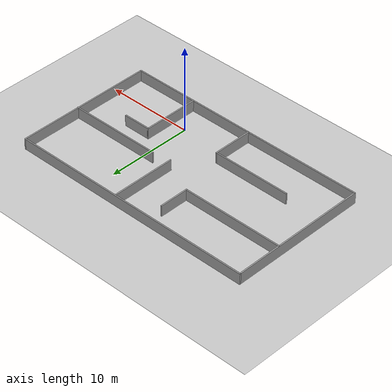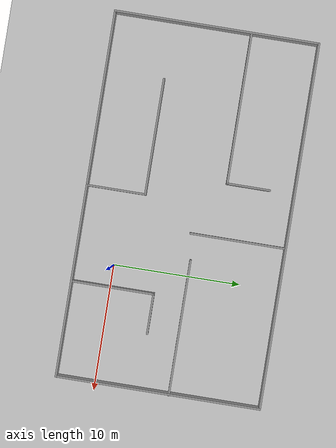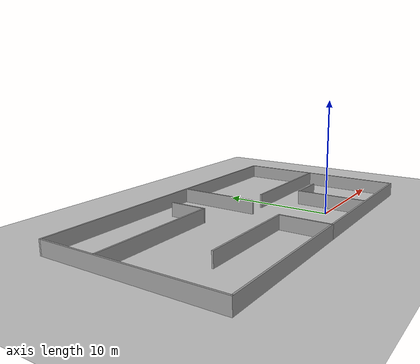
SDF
<?xml version='1.0'?>
<sdf version='1.7'>
  <world name='grasp_assignment_world'>

    <light name='sun' type='directional'>
      <cast_shadows>1</cast_shadows>
      <pose>0 0 10 0 -0 0</pose>
      <diffuse>0.8 0.8 0.8 1</diffuse>
      <specular>0.2 0.2 0.2 1</specular>
      <attenuation><range>1000</range><constant>0.9</constant><linear>0.01</linear><quadratic>0.001</quadratic></attenuation>
      <direction>-0.5 0.1 -0.9</direction>
    </light>

    <model name='ground_plane'>
      <static>1</static>
      <link name='link'>
        <collision name='collision'>
          <geometry><plane><normal>0 0 1</normal><size>100 100</size></plane></geometry>
          <surface><friction><ode><mu>100</mu><mu2>50</mu2></ode></friction></surface>
        </collision>
        <visual name='visual'>
          <cast_shadows>0</cast_shadows>
          <geometry><plane><normal>0 0 1</normal><size>100 100</size></plane></geometry>
          <material><script><uri>file://media/materials/scripts/gazebo.material</uri><name>Gazebo/Grey</name></script></material>
        </visual>
      </link>
    </model>

    <model name='target_cube'>
      <pose>0.27 0 0.03 0 0 0</pose>
      <link name='link'>
        <inertial>
          <mass>0.2</mass>
          <inertia>
            <ixx>8.33e-5</ixx><ixy>0</ixy><ixz>0</ixz>
            <iyy>8.33e-5</iyy><iyz>0</iyz>
            <izz>8.33e-5</izz>
          </inertia>
        </inertial>
        <collision name='collision'>
          <geometry><box><size>0.05 0.05 0.05</size></box></geometry>
          <surface>
            <friction><ode><mu>20.0</mu><mu2>20.0</mu2></ode></friction>
            <contact><ode><kp>10000.0</kp><kd>100.0</kd><min_depth>0.001</min_depth></ode></contact>
          </surface>
        </collision>
        <visual name='visual'>
          <geometry><box><size>0.05 0.05 0.05</size></box></geometry>
          <material><script><name>Gazebo/Blue</name><uri>file://media/materials/scripts/gazebo.material</uri></script></material>
        </visual>
      </link>
    </model>

    <model name='room_walls'>
      <pose>-5.16529 5.02 0 0 -0 0</pose>
      <static>1</static>

      <link name='Wall_0'>
        <pose>6.85529 -8.05 0 0 -0 0</pose>
        <collision name='Collision'><geometry><box><size>15.25 0.15 2.5</size></box></geometry></collision>
        <visual name='Visual'><geometry><box><size>15.25 0.15 2.5</size></box></geometry><material><script><uri>file://media/materials/scripts/gazebo.material</uri><name>Gazebo/Grey</name></script></material></visual>
      </link>
      <link name='Wall_1'>
        <pose>14.4053 0 0 0 -0 1.5708</pose>
        <collision name='Collision'><geometry><box><size>16.25 0.15 2.5</size></box></geometry></collision>
        <visual name='Visual'><geometry><box><size>16.25 0.15 2.5</size></box></geometry><material><script><uri>file://media/materials/scripts/gazebo.material</uri><name>Gazebo/Grey</name></script></material></visual>
      </link>
      <link name='Wall_2'>
        <pose>-0.019713 8.05 0 0 -0 3.14159</pose>
        <collision name='Collision'><geometry><box><size>29 0.15 2.5</size></box></geometry></collision>
        <visual name='Visual'><geometry><box><size>29 0.15 2.5</size></box></geometry><material><script><uri>file://media/materials/scripts/gazebo.material</uri><name>Gazebo/Grey</name></script></material></visual>
      </link>
      <link name='Wall_3'>
        <pose>-14.4447 0 0 0 -0 -1.5708</pose>
        <collision name='Collision'><geometry><box><size>16.25 0.15 2.5</size></box></geometry></collision>
        <visual name='Visual'><geometry><box><size>16.25 0.15 2.5</size></box></geometry><material><script><uri>file://media/materials/scripts/gazebo.material</uri><name>Gazebo/Grey</name></script></material></visual>
      </link>
      <link name='Wall_4'>
        <pose>-7.56971 -8.05 0 0 -0 0</pose>
        <collision name='Collision'><geometry><box><size>13.9 0.15 2.5</size></box></geometry></collision>
        <visual name='Visual'><geometry><box><size>13.9 0.15 2.5</size></box></geometry><material><script><uri>file://media/materials/scripts/gazebo.material</uri><name>Gazebo/Grey</name></script></material></visual>
      </link>
      <link name='Wall_5'>
        <pose>-0.694713 -5.75 0 0 -0 1.5708</pose>
        <collision name='Wall_5_Collision'><geometry><box><size>4.75 0.15 2.5</size></box></geometry></collision>
        <visual name='Wall_5_Visual'><geometry><box><size>4.75 0.15 2.5</size></box></geometry><material><script><uri>file://media/materials/scripts/gazebo.material</uri><name>Gazebo/Grey</name></script></material></visual>
      </link>
      <link name='Wall_6'>
        <pose>-5.24471 -3.45 0 0 -0 3.14159</pose>
        <collision name='Wall_6_Collision'><geometry><box><size>9.25 0.15 2.5</size></box></geometry></collision>
        <visual name='Wall_6_Visual'><geometry><box><size>9.25 0.15 2.5</size></box></geometry><material><script><uri>file://media/materials/scripts/gazebo.material</uri><name>Gazebo/Grey</name></script></material></visual>
      </link>
      <link name='Wall_8'>
        <pose>6.87952 -4.73656 0 0 -0 1.5708</pose>
        <collision name='Wall_8_Collision'><geometry><box><size>6.5 0.15 2.5</size></box></geometry></collision>
        <visual name='Wall_8_Visual'><geometry><box><size>6.5 0.15 2.5</size></box></geometry><material><script><uri>file://media/materials/scripts/gazebo.material</uri><name>Gazebo/Grey</name></script></material></visual>
      </link>
      <link name='Wall_9'>
        <pose>8.42952 -1.56156 0 0 -0 0</pose>
        <collision name='Wall_9_Collision'><geometry><box><size>3.25 0.15 2.5</size></box></geometry></collision>
        <visual name='Wall_9_Visual'><geometry><box><size>3.25 0.15 2.5</size></box></geometry><material><script><uri>file://media/materials/scripts/gazebo.material</uri><name>Gazebo/Grey</name></script></material></visual>
      </link>
      <link name='Wall_11'>
        <pose>9.14471 0.867304 0 0 -0 3.14159</pose>
        <collision name='Wall_11_Collision'><geometry><box><size>10.75 0.15 2.5</size></box></geometry></collision>
        <visual name='Wall_11_Visual'><geometry><box><size>10.75 0.15 2.5</size></box></geometry><material><script><uri>file://media/materials/scripts/gazebo.material</uri><name>Gazebo/Grey</name></script></material></visual>
      </link>
      <link name='Wall_13'>
        <pose>1.74166 4.21866 0 0 -0 1.5708</pose>
        <collision name='Wall_13_Collision'><geometry><box><size>7.5 0.15 2.5</size></box></geometry></collision>
        <visual name='Wall_13_Visual'><geometry><box><size>7.5 0.15 2.5</size></box></geometry><material><script><uri>file://media/materials/scripts/gazebo.material</uri><name>Gazebo/Grey</name></script></material></visual>
      </link>
      <link name='Wall_15'>
        <pose>-8.47511 2.72826 0 0 -0 0</pose>
        <collision name='Wall_15_Collision'><geometry><box><size>12 0.15 2.5</size></box></geometry></collision>
        <visual name='Wall_15_Visual'><geometry><box><size>12 0.15 2.5</size></box></geometry><material><script><uri>file://media/materials/scripts/gazebo.material</uri><name>Gazebo/Grey</name></script></material></visual>
      </link>
      <link name='Wall_16'>
        <pose>-2.55011 4.40326 0 0 -0 1.5708</pose>
        <collision name='Wall_16_Collision'><geometry><box><size>3.5 0.15 2.5</size></box></geometry></collision>
        <visual name='Wall_16_Visual'><geometry><box><size>3.5 0.15 2.5</size></box></geometry><material><script><uri>file://media/materials/scripts/gazebo.material</uri><name>Gazebo/Grey</name></script></material></visual>
      </link>
    </model>

  <plugin name="gazebo_link_attacher" filename="libgazebo_link_attacher.so"/>
  </world>
</sdf>
